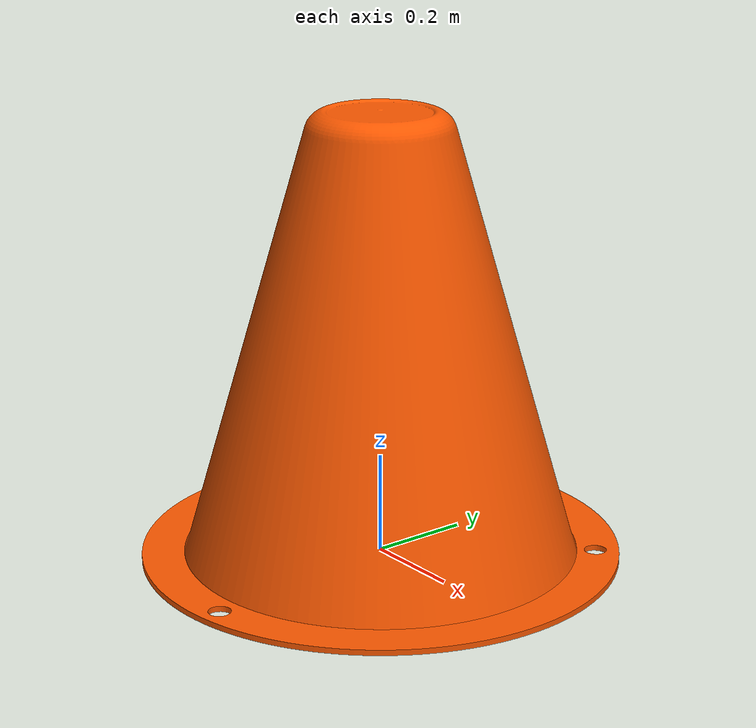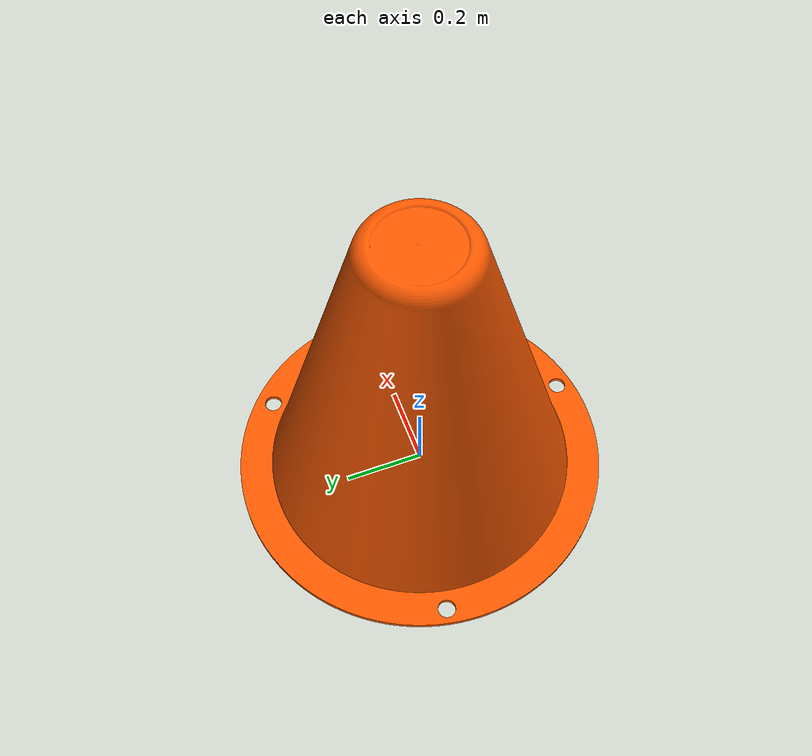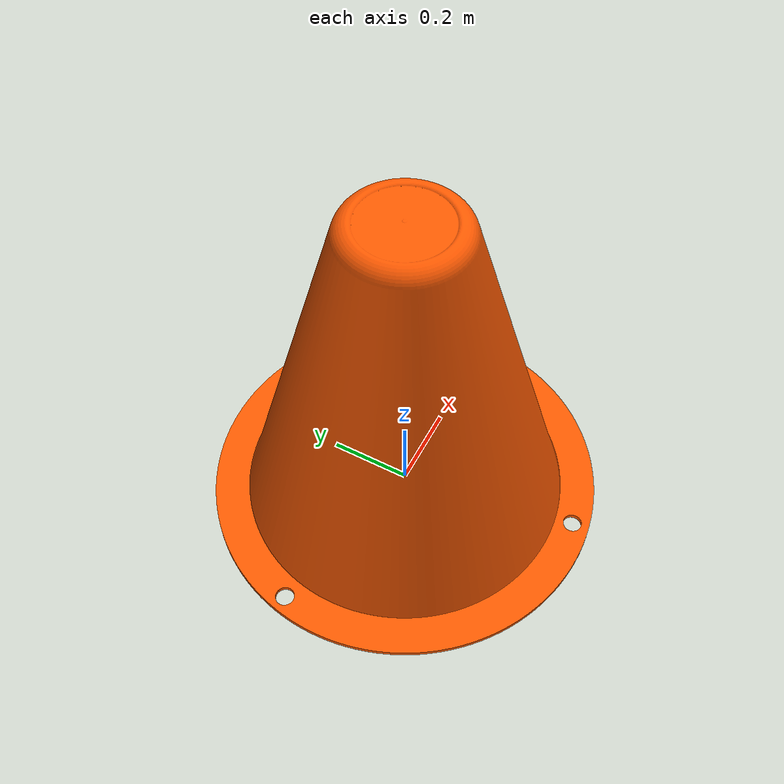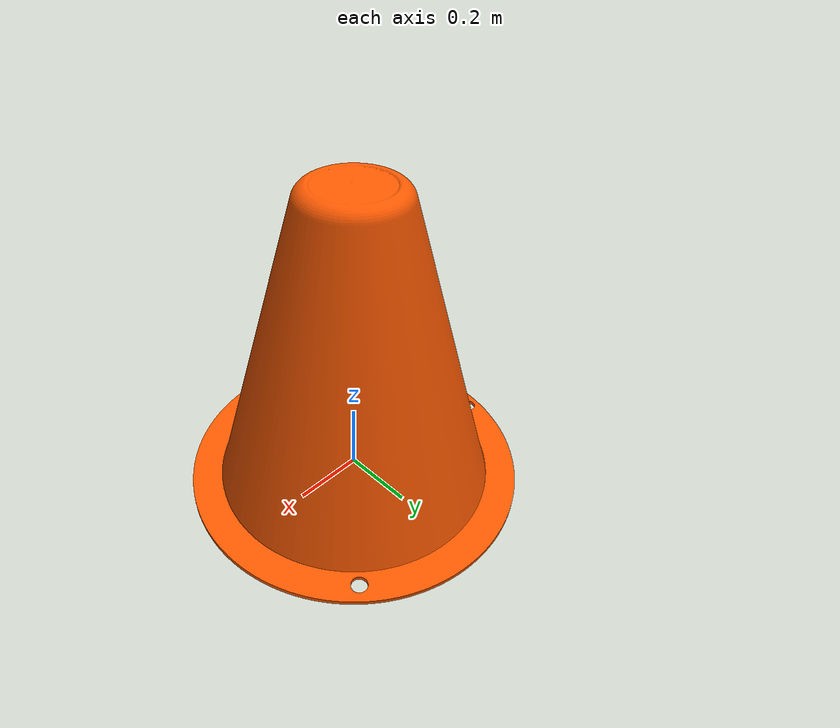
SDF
<?xml version="1.0" ?>
<sdf version="1.6">
  <model name="cone_orange_big">
    <static>true</static>
    <link name="link">
      <visual name="visual">
        <geometry>
          <mesh>
            <uri>model://cone_orange_big/meshes/cone.stl</uri>
            <scale>0.0112 0.0112 0.0112</scale>
          </mesh>
        </geometry>
        <material>
          <ambient>1.0 0.35 0.0 1</ambient>
	  <diffuse>1.0 0.35 0.0 1</diffuse>
        </material>
      </visual>
      <collision name="collision">
        <geometry>
          <mesh>
            <uri>model://cone_orange_big/meshes/cone.stl</uri>
            <scale>0.0112 0.0112 0.0112</scale>
          </mesh>
        </geometry>
      </collision>
      <inertial>
        <mass>0.1</mass>
        <inertia>
          <ixx>0.0001</ixx>
          <iyy>0.0001</iyy>
          <izz>0.0001</izz>
          <ixy>0.0</ixy>
          <ixz>0.0</ixz>
          <iyz>0.0</iyz>
        </inertia>
      </inertial>
    </link>
  </model>
</sdf>
